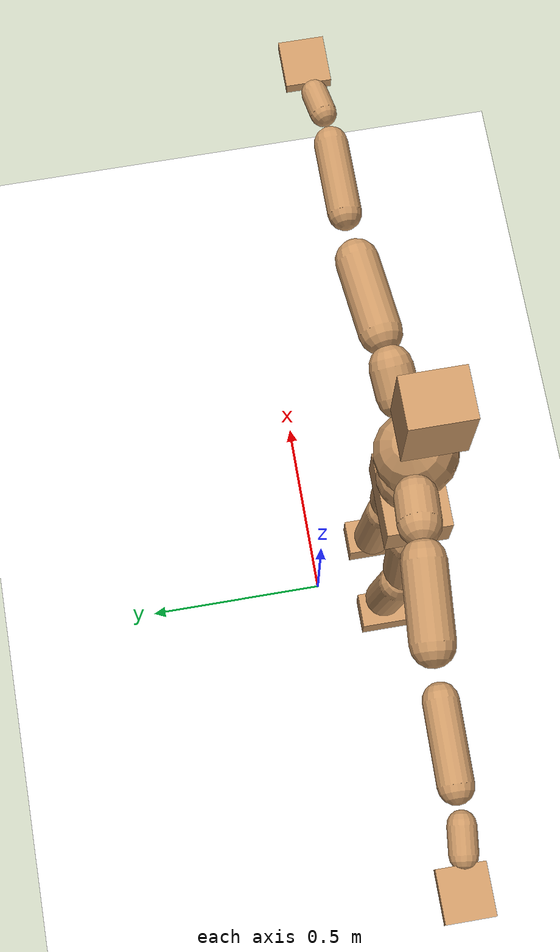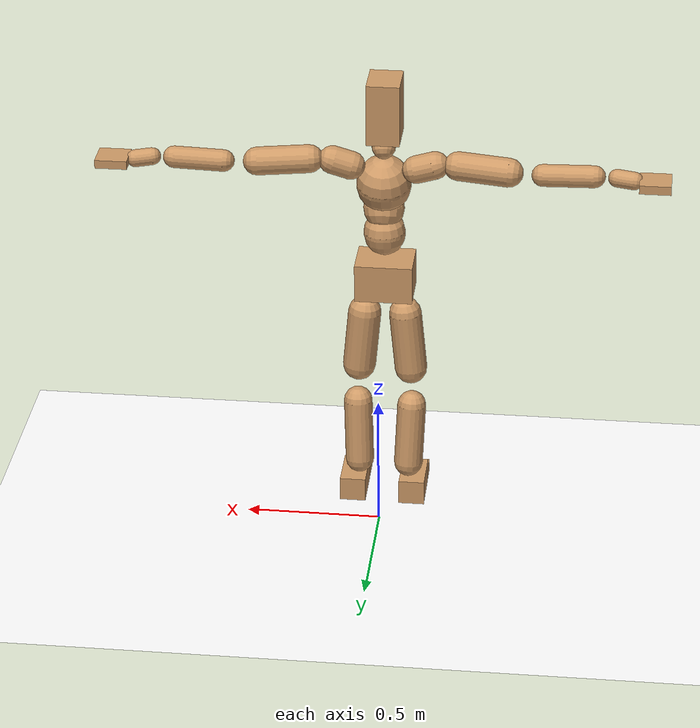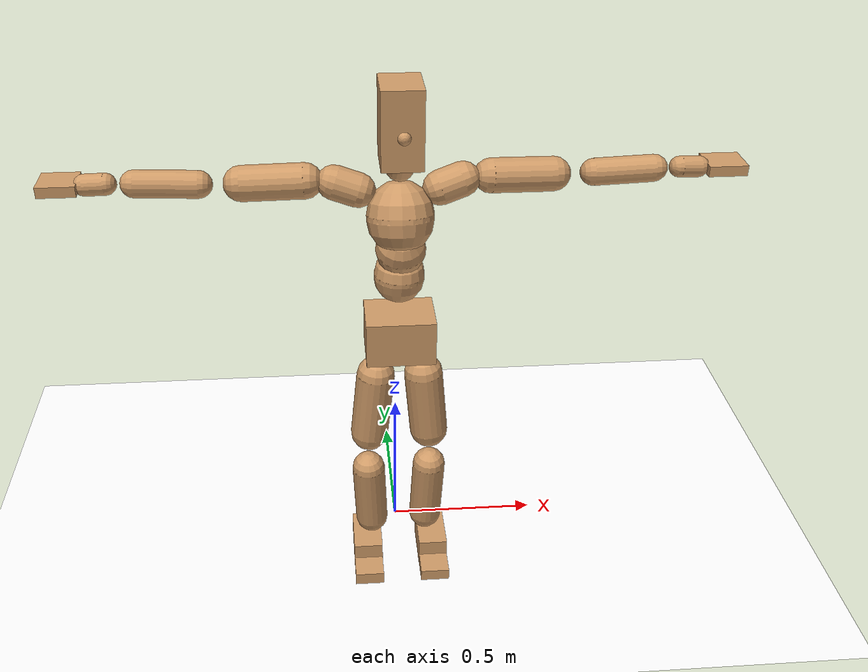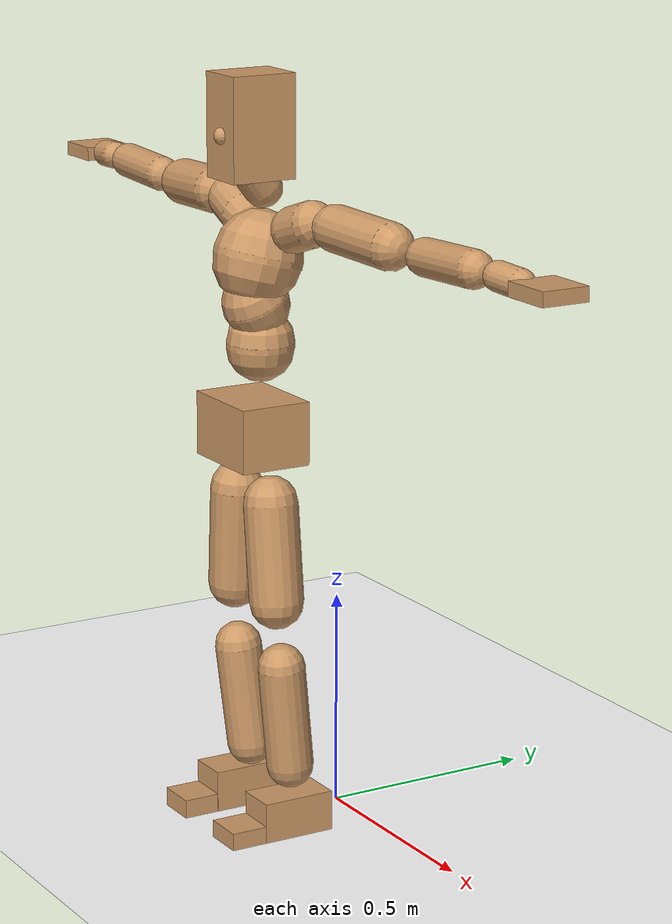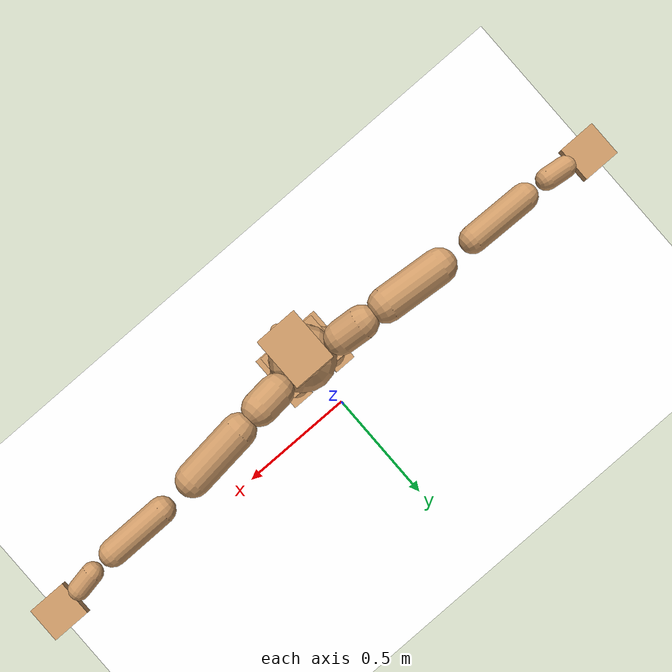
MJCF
<mujoco model="humanoid">
  <option integrator="implicitfast" />

  <visual>
    <global offwidth="1280" offheight="960" />
    <headlight active="1" ambient="0.34 0.34 0.34" diffuse="0.5 0.5 0.5" />
  </visual>

  <default>
    <joint damping="2" stiffness="2" armature="0.01" limited="true" solimplimit="0 .99 .01" />
    <geom condim="1" friction="0.7 0.005 0.0001" solimp=".99 .99 .003" solref="0.015 1" margin="0.001" rgba="0.8 0.6 .4 1" />
    <default class="smplcontact">
      <geom condim="3" friction="1. 0.005 0.0001" solref="0.015 1" solimp="0.98 0.98 0.001" priority="1" />
    </default>
    <default class="stiff_medium">
      <joint stiffness="10" />
    </default>
    <default class="stiff_medium_higher">
      <joint stiffness="50" />
    </default>
    <default class="stiff_high">
      <joint stiffness="100" />
    </default>
  </default>

  <asset>
    <texture type="skybox" builtin="gradient" rgb1="0.99 0.99 0.99" rgb2="0.608 0.828 0.892" width="100" />
    <texture builtin="flat" height="1278" mark="cross" markrgb="1 1 1" name="texgeom" random="0.01" rgb1="0.8 0.6 0.4" rgb2="0.8 0.6 0.4" type="cube" width="127" />
    <texture name="texplane" type="2d" builtin="checker" markrgb="1 1 1" rgb1="0.756 0.772 0.76" rgb2="0.6 0.6 0.6" width="100" height="100" />
    <material name="MatPlane" reflectance="0.5" texture="texplane" texrepeat="1 1" texuniform="true" />
    <material name="geom" texture="texgeom" texuniform="true" />
  </asset>

  <worldbody>
    <light name="tracking_light" pos="0 0 7" dir="0 0 -1" directional="true" cutoff="100" exponent="1" diffuse="1 1 1" specular="0.1 0.1 0.1" mode="trackcom" />
    <camera name="back" pos="0 3 2.4" xyaxes="-1 0 0 0 -1 2" mode="trackcom" />
    <camera name="side" pos="-3 0 2.4" xyaxes="0 -1 0 1 0 2" mode="trackcom" />
    <camera name="front_side" pos="-2.8 -2.8 0.8" xyaxes="0.5 -0.5 0 0.1 0.1 1" mode="trackcom" />
    <geom condim="3" name="floor" pos="0 0 0" rgba="1 1 1 1" size="100 100 .2" type="plane" material="MatPlane" />
    <body name="Pelvis" pos="-0.0018 -0.2233 0.9367" euler="90 0 0">
      <site name="Pelvis" size="0.01" />
      <freejoint name="Pelvis" />
      <geom type="box" pos="-0.0000 -0.0121 -0.0055" size="0.1069 0.0722 0.083" quat="1.0000 0.0000 0.0000 0.0000" density="3165.830099" name="Pelvis" />
      <body name="L_Hip" pos="0.0695 -0.0914 -0.0068">
        <joint name="L_Hip_x" type="hinge" pos="0 0 0" axis="1 0 0" stiffness="10.0" range="-160.0 22.92" class="stiff_medium" damping="15.0" armature="0.01"/>
        <joint name="L_Hip_y" type="hinge" pos="0 0 0" axis="0 1 0" stiffness="10.0" range="-70.0 70.0" class="stiff_medium" damping="10.000000000000002" armature="0.010000000000000007"/>
        <joint name="L_Hip_z" type="hinge" pos="0 0 0" axis="0 0 1" stiffness="10.0" range="-28.65 90.0" class="stiff_medium" damping="9.999999999999998" armature="0.009999999999999998"/>
        <geom type="capsule" density="2040.816327" fromto="0.0069 -0.075 -0.0009 0.0274 -0.3002 -0.0036" size="0.0615" name="L_Hip" />
        <body name="L_Knee" pos="0.0343 -0.3752 -0.0045">
          <joint name="L_Knee_x" type="hinge" pos="0 0 0" axis="1 0 0" range="-5.16 171.89" damping="8.0" armature="0.01" stiffness="2.0"/>
          <joint name="L_Knee_y" type="hinge" pos="0 0 0" axis="0 1 0" range="-4.58 6.88" damping="7.999999999999999" armature="0.009999999999999998" stiffness="2.0"/>
          <joint name="L_Knee_z" type="hinge" pos="0 0 0" axis="0 0 1" range="-6.88 4.58" damping="7.999999999999998" armature="0.009999999999999995" stiffness="2.0"/>
          <geom type="capsule" density="1234.567901" fromto="-0.0027 -0.0796 -0.0087 -0.0109 -0.3184 -0.035" size="0.0541" name="L_Knee" />
          <body name="L_Ankle" pos="-0.0136 -0.398 -0.0437">
            <joint name="L_Ankle_x" type="hinge" pos="0 0 0" axis="1 0 0" range="-45.84 45.84" class="stiff_medium" damping="6.000000000000025" armature="0.010000000000000085" stiffness="10.0"/>
            <joint name="L_Ankle_y" type="hinge" pos="0 0 0" axis="0 1 0" range="-74.48 22.92" class="stiff_medium" damping="3.000000000000001" armature="0.010000000000000005" stiffness="10.0"/>
            <joint name="L_Ankle_z" type="hinge" pos="0 0 0" axis="0 0 1" range="-4.58 4.58" class="stiff_medium" damping="5.999999999999934" armature="0.009999999999999783" stiffness="10.0"/>
            <geom type="box" pos="0.0233 -0.0239 0.0242" size="0.0483 0.0464 0.085" quat="1.0000 0.0000 0.0000 0.0000" density="449.071558" name="L_Ankle" class="smplcontact" />
            <body name="L_Toe" pos="0.0264 -0.0558 0.1193">
              <joint name="L_Toe_x" type="hinge" pos="0 0 0" axis="1 0 0" range="-91.67 22.92" armature="0.00999999999999966" damping="1.999999999999966" stiffness="2.0"/>
              <joint name="L_Toe_y" type="hinge" pos="0 0 0" axis="0 1 0" range="-4.58 4.58" armature="0.009999999999999976" damping="1.9999999999999976" stiffness="2.0"/>
              <joint name="L_Toe_z" type="hinge" pos="0 0 0" axis="0 0 1" range="-4.58 4.58" armature="0.009999999999998892" damping="1.999999999999889" stiffness="2.0"/>
              <geom type="box" pos="-0.003 0.0055 0.0248" size="0.0478 0.02 0.0496" quat="1.0000 0.0000 0.0000 0.0000" density="423.206892" name="L_Toe" class="smplcontact" />
            </body>
          </body>
        </body>
      </body>
      <body name="R_Hip" pos="-0.0677 -0.0905 -0.0043">
        <joint name="R_Hip_x" type="hinge" pos="0 0 0" axis="1 0 0" stiffness="10.0" range="-160.0 22.92" class="stiff_medium" damping="15.0" armature="0.01"/>
        <joint name="R_Hip_y" type="hinge" pos="0 0 0" axis="0 1 0" stiffness="10.0" range="-70.0 70.0" class="stiff_medium" damping="10.000000000000002" armature="0.010000000000000007"/>
        <joint name="R_Hip_z" type="hinge" pos="0 0 0" axis="0 0 1" stiffness="10.0" range="-90.0 28.65" class="stiff_medium" damping="9.999999999999998" armature="0.009999999999999998"/>
        <geom type="capsule" density="2040.816327" fromto="-0.0077 -0.0765 -0.0018 -0.0306 -0.3061 -0.0071" size="0.0606" name="R_Hip" />
        <body name="R_Knee" pos="-0.0383 -0.3826 -0.0089">
          <joint name="R_Knee_x" type="hinge" pos="0 0 0" axis="1 0 0" range="-5.16 171.89" damping="8.0" armature="0.01" stiffness="2.0"/>
          <joint name="R_Knee_y" type="hinge" pos="0 0 0" axis="0 1 0" range="-6.88 4.58" damping="7.999999999999999" armature="0.009999999999999998" stiffness="2.0"/>
          <joint name="R_Knee_z" type="hinge" pos="0 0 0" axis="0 0 1" range="-4.58 6.88" damping="7.999999999999998" armature="0.009999999999999995" stiffness="2.0"/>
          <geom type="capsule" density="1234.567901" fromto="0.0032 -0.0797 -0.0085 0.0126 -0.3187 -0.0338" size="0.0541" name="R_Knee" />
          <body name="R_Ankle" pos="0.0158 -0.3984 -0.0423">
            <joint name="R_Ankle_x" type="hinge" pos="0 0 0" axis="1 0 0" range="-45.84 45.84" class="stiff_medium" damping="6.000000000000025" armature="0.010000000000000085" stiffness="10.0"/>
            <joint name="R_Ankle_y" type="hinge" pos="0 0 0" axis="0 1 0" range="-22.92 74.48" class="stiff_medium" damping="3.000000000000001" armature="0.010000000000000005" stiffness="10.0"/>
            <joint name="R_Ankle_z" type="hinge" pos="0 0 0" axis="0 0 1" range="-4.58 4.58" class="stiff_medium" damping="5.999999999999934" armature="0.009999999999999783" stiffness="10.0"/>
            <geom type="box" pos="-0.0212 -0.0174 0.0256" size="0.0483 0.0478 0.0865" quat="1.0000 0.0000 0.0000 0.0000" density="434.700981" name="R_Ankle" class="smplcontact" />
            <body name="R_Toe" pos="-0.0254 -0.0481 0.1233">
              <joint name="R_Toe_x" type="hinge" pos="0 0 0" axis="1 0 0" range="-91.67 22.92" armature="0.00999999999999966" damping="1.999999999999966" stiffness="2.0"/>
              <joint name="R_Toe_y" type="hinge" pos="0 0 0" axis="0 1 0" range="-4.58 4.58" armature="0.009999999999999976" damping="1.9999999999999976" stiffness="2.0"/>
              <joint name="R_Toe_z" type="hinge" pos="0 0 0" axis="0 0 1" range="-4.58 4.58" armature="0.009999999999998892" damping="1.999999999999889" stiffness="2.0"/>
              <geom type="box" pos="0.0042 0.0045 0.0227" size="0.0479 0.0216 0.0493" quat="1.0000 0.0000 0.0000 0.0000" density="407.384095" name="R_Toe" class="smplcontact" />
            </body>
          </body>
        </body>
      </body>
      <body name="Torso" pos="-0.0025 0.109 -0.0267">
        <joint name="Torso_x" type="hinge" pos="0 0 0" axis="1 0 0" range="-25.78 57.3" class="stiff_medium" damping="16.249002662379553" armature="0.011000822944888123" stiffness="10.667084285714289"/>
        <joint name="Torso_y" type="hinge" pos="0 0 0" axis="0 1 0" range="-57.3 57.3" class="stiff_high" damping="25.82786225767886" armature="0.01578264216679615" stiffness="105.6664755102041"/>
        <joint name="Torso_z" type="hinge" pos="0 0 0" axis="0 0 1" range="-34.38 34.38" class="stiff_high" damping="22.95942684909094" armature="0.012628565201764912" stiffness="104.35375531914897"/>
        <geom type="capsule" density="2040.816327" fromto="0.0025 0.0608 0.0005 0.003 0.0743 0.0006" size="0.0769" name="Torso" />
        <body name="Spine" pos="0.0055 0.1352 0.0011">
          <joint name="Spine_x" type="hinge" pos="0 0 0" axis="1 0 0" stiffness="10.801640204081632" range="-25.78 57.3" class="stiff_medium" damping="16.529498689681223" armature="0.011242092117287047"/>
          <joint name="Spine_y" type="hinge" pos="0 0 0" axis="0 1 0" stiffness="10.993194042553192" range="-57.3 57.3" class="stiff_high" damping="10.550939846165113" armature="0.015822621024438047"/>
          <joint name="Spine_z" type="hinge" pos="0 0 0" axis="0 0 1" stiffness="21.950184081632656" range="-34.38 34.38" class="stiff_high" damping="14.755254913518767" armature="0.013775988465595862"/>
          <geom type="capsule" density="2040.816327" fromto="0.0007 0.0238 0.0114 0.0008 0.0291 0.014" size="0.0755" name="Spine" />
          <body name="Chest" pos="0.0015 0.0529 0.0254">
            <joint name="Chest_x" type="hinge" pos="0 0 0" axis="1 0 0" stiffness="11.160686250000001" range="-25.78 57.3" class="stiff_medium" damping="16.913025635620162" armature="0.011391192649850414"/>
            <joint name="Chest_y" type="hinge" pos="0 0 0" axis="0 1 0" stiffness="12.279827826086954" range="-57.3 57.3" class="stiff_high" damping="11.15352776697087" armature="0.015828955346832544"/>
            <joint name="Chest_z" type="hinge" pos="0 0 0" axis="0 0 1" stiffness="22.066057083333334" range="-34.38 34.38" class="stiff_high" damping="15.064016907343916" armature="0.014283161773945485"/>
            <geom type="capsule" density="2040.816327" fromto="-0.0009 0.0682 -0.0173 -0.001 0.0833 -0.0212" size="0.1002" name="Chest" />
            <body name="Neck" pos="-0.0028 0.2139 -0.0429">
              <joint name="Neck_x" type="hinge" pos="0 0 0" axis="1 0 0" range="-28.65 57.3" class="stiff_medium_higher" damping="10.000000000000004" armature="0.010000000000000009" stiffness="50.0"/>
              <joint name="Neck_y" type="hinge" pos="0 0 0" axis="0 1 0" range="-40.11 40.11" class="stiff_medium_higher" damping="10.0" armature="0.01" stiffness="50.0"/>
              <joint name="Neck_z" type="hinge" pos="0 0 0" axis="0 0 1" range="-40.11 40.11" class="stiff_medium_higher" damping="9.999999999999988" armature="0.009999999999999976" stiffness="50.0"/>
              <geom type="capsule" density="1000" fromto="0.001 0.013 0.0103 0.0041 0.052 0.0411" size="0.0436" name="Neck" />
              <body name="Head" pos="0.0052 0.065 0.0513">
                <joint name="Head_x" type="hinge" pos="0 0 0" axis="1 0 0" range="-28.65 57.3" class="stiff_medium_higher" damping="2.000000000000001" armature="0.010000000000000009" stiffness="50.0"/>
                <joint name="Head_y" type="hinge" pos="0 0 0" axis="0 1 0" range="-40.11 40.11" class="stiff_medium_higher" damping="2.0" armature="0.01" stiffness="50.0"/>
                <joint name="Head_z" type="hinge" pos="0 0 0" axis="0 0 1" range="-40.11 40.11" class="stiff_medium_higher" damping="1.9999999999999973" armature="0.009999999999999974" stiffness="50.0"/>
                <geom type="box" pos="-0.0042 0.0876 -0.0116" size="0.0606 0.1154 0.076" quat="1.0000 0.0000 0.0000 0.0000" density="1018.069894" name="Head" />
                <geom type="capsule" name="nose" size="0.02 0.01" pos="0 0.07 0.05" quat="1 0 0 0" mass="0" contype="0" conaffinity="0" />
              </body>
            </body>
            <body name="L_Thorax" pos="0.09456 0.14604 -0.04092">
              <joint name="L_Thorax_x" type="hinge" pos="0 0 0" axis="1 0 0" range="-10.89 4.58" class="stiff_medium_higher" damping="27.3428280371456" armature="0.0138831614052876" stiffness="67.31448112244898"/>
              <joint name="L_Thorax_y" type="hinge" pos="0 0 0" axis="0 1 0" range="-28.65 17.19" class="stiff_medium_higher" damping="29.39539222803986" armature="0.015973211475722778" stiffness="67.620175"/>
              <joint name="L_Thorax_z" type="hinge" pos="0 0 0" axis="0 0 1" range="-31.51 40.11" class="stiff_medium_higher" damping="29.39640952740423" armature="0.015975115138279115" stiffness="67.61679693877551"/>
              <geom type="capsule" density="1000" fromto="0.02184 0.00732 -0.00216 0.08736 0.02928 -0.00852" size="0.0521" name="L_Thorax" />
              <body name="L_Shoulder" pos="0.1092 0.0366 -0.01068">
                <joint name="L_Shoulder_x" type="hinge" pos="0 0 0" axis="1 0 0" range="-97.4 97.4" class="stiff_medium" damping="7.934224871342918" armature="0.013032307273704902" stiffness="13.417919999999999"/>
                <joint name="L_Shoulder_y" type="hinge" pos="0 0 0" axis="0 1 0" range="-108.86 80.21" class="stiff_medium" damping="8.787023272078152" armature="0.015885669306109254" stiffness="13.501298367346937"/>
                <joint name="L_Shoulder_z" type="hinge" pos="0 0 0" axis="0 0 1" range="-97.4 85.94" class="stiff_medium" damping="8.786069504764413" armature="0.015888008764521212" stiffness="13.496380000000002"/>
                <geom type="capsule" density="1000" fromto="0.06228 -0.00312 -0.0066 0.24924 -0.01224 -0.0264" size="0.0517" name="L_Shoulder" />
                <body name="L_Elbow" pos="0.31152 -0.01536 -0.033">
                  <joint name="L_Elbow_x" type="hinge" pos="0 0 0" axis="1 0 0" range="-17.19 4.58" damping="6.232456205291389" armature="0.011731525217588268" stiffness="2.6488293469387756"/>
                  <joint name="L_Elbow_y" type="hinge" pos="0 0 0" axis="0 1 0" range="-180.0 17.19" damping="7.156106367972161" armature="0.015461775606096722" stiffness="2.649623673469388"/>
                  <joint name="L_Elbow_z" type="hinge" pos="0 0 0" axis="0 0 1" range="-100.84 4.58" damping="7.157115854883427" armature="0.01547403112739422" stiffness="2.648272163265306"/>
                  <geom type="capsule" density="1000" fromto="0.05976 0.00216 -0.00024 0.23928 0.00864 -0.00108" size="0.0405" name="L_Elbow" />
                  <body name="L_Wrist" pos="0.29904 0.0108 -0.00144">
                    <joint name="L_Wrist_x" type="hinge" pos="0 0 0" axis="1 0 0" range="-180.0 22.92" armature="0.011470487256353397" damping="2.3885555565203305" stiffness="2.4869029183673472"/>
                    <joint name="L_Wrist_y" type="hinge" pos="0 0 0" axis="0 1 0" range="-17.19 17.19" armature="0.014137841032973743" damping="2.658561374727874" stiffness="2.4996562653061227"/>
                    <joint name="L_Wrist_z" type="hinge" pos="0 0 0" axis="0 0 1" range="-22.92 22.92" armature="0.014283798741946243" damping="2.6694984653462823" stiffness="2.4945122040816328"/>
                    <geom type="capsule" density="1000" fromto="0.02016 -0.00192 -0.0036 0.08064 -0.0078 -0.0144" size="0.0318" name="L_Wrist" class="smplcontact" />
                    <body name="L_Hand" pos="0.1008 -0.00984 -0.01788">
                      <joint name="L_Hand_x" type="hinge" pos="0 0 0" axis="1 0 0" range="-17.19 17.19" armature="0.010191691106290488" damping="2.2117892600832105" stiffness="2.4000000000000004"/>
                      <joint name="L_Hand_y" type="hinge" pos="0 0 0" axis="0 1 0" range="-51.57 51.57" armature="0.012318239464288804" damping="2.431615706245258" stiffness="2.4000000000000004"/>
                      <joint name="L_Hand_z" type="hinge" pos="0 0 0" axis="0 0 1" range="-91.67 91.67" armature="0.012885099984316611" damping="2.486935462064099" stiffness="2.4000000000000004"/>
                      <geom type="box" pos="0.05916 0.0012 -0.00696" size="0.0585 0.0158 0.0538" quat="1.0000 0.0000 0.0000 0.0000" density="400.552564" name="L_Hand" class="smplcontact" />
                    </body>
                  </body>
                </body>
              </body>
            </body>
            <body name="R_Thorax" pos="-0.09816 0.14256 -0.04632">
              <joint name="R_Thorax_x" type="hinge" pos="0 0 0" axis="1 0 0" range="-10.89 4.58" class="stiff_medium_higher" damping="27.3428280371456" armature="0.0138831614052876" stiffness="67.31448112244898"/>
              <joint name="R_Thorax_y" type="hinge" pos="0 0 0" axis="0 1 0" range="-17.19 28.65" class="stiff_medium_higher" damping="29.39539222803986" armature="0.015973211475722778" stiffness="67.620175"/>
              <joint name="R_Thorax_z" type="hinge" pos="0 0 0" axis="0 0 1" range="-40.11 31.51" class="stiff_medium_higher" damping="29.39640952740423" armature="0.015975115138279115" stiffness="67.61679693877551"/>
              <geom type="capsule" density="1000" fromto="-0.02304 0.0078 -0.00216 -0.09216 0.0312 -0.00876" size="0.0511" name="R_Thorax" />
              <body name="R_Shoulder" pos="-0.1152 0.03912 -0.01092">
                <joint name="R_Shoulder_x" type="hinge" pos="0 0 0" axis="1 0 0" range="-97.4 97.4" class="stiff_medium" damping="7.934224871342918" armature="0.013032307273704902" stiffness="13.417919999999999"/>
                <joint name="R_Shoulder_y" type="hinge" pos="0 0 0" axis="0 1 0" range="-80.21 108.86" class="stiff_medium" damping="8.787023272078152" armature="0.015885669306109254" stiffness="13.501298367346937"/>
                <joint name="R_Shoulder_z" type="hinge" pos="0 0 0" axis="0 0 1" range="-85.94 97.4" class="stiff_medium" damping="8.786069504764413" armature="0.015888008764521212" stiffness="13.496380000000002"/>
                <geom type="capsule" density="1000" fromto="-0.06084 -0.00324 -0.00516 -0.2436 -0.01284 -0.02052" size="0.0531" name="R_Shoulder" />
                <body name="R_Elbow" pos="-0.30444 -0.01596 -0.02568">
                  <joint name="R_Elbow_x" type="hinge" pos="0 0 0" axis="1 0 0" range="-17.19 4.58" damping="6.232456205291389" armature="0.011731525217588268" stiffness="2.6488293469387756"/>
                  <joint name="R_Elbow_y" type="hinge" pos="0 0 0" axis="0 1 0" range="-17.19 180.0" damping="7.156106367972161" armature="0.015461775606096722" stiffness="2.649623673469388"/>
                  <joint name="R_Elbow_z" type="hinge" pos="0 0 0" axis="0 0 1" range="-4.58 100.84" damping="7.157115854883427" armature="0.01547403112739422" stiffness="2.648272163265306"/>
                  <geom type="capsule" density="1000" fromto="-0.06132 0.00192 -0.00132 -0.24504 0.00744 -0.00528" size="0.0408" name="R_Elbow" />
                  <body name="R_Wrist" pos="-0.30636 0.00936 -0.00672">
                    <joint name="R_Wrist_x" type="hinge" pos="0 0 0" axis="1 0 0" range="-180.0 22.92" armature="0.011470487256353397" damping="2.3885555565203305" stiffness="2.4869029183673472"/>
                    <joint name="R_Wrist_y" type="hinge" pos="0 0 0" axis="0 1 0" range="-17.19 17.19" armature="0.014137841032973743" damping="2.658561374727874" stiffness="2.4996562653061227"/>
                    <joint name="R_Wrist_z" type="hinge" pos="0 0 0" axis="0 0 1" range="-22.92 22.92" armature="0.014283798741946243" damping="2.6694984653462823" stiffness="2.4945122040816328"/>
                    <geom type="capsule" density="1000" fromto="-0.02028 -0.00144 -0.00252 -0.08124 -0.00588 -0.00996" size="0.0326" name="R_Wrist" class="smplcontact" />
                    <body name="R_Hand" pos="-0.10152 -0.00732 -0.01236">
                      <joint name="R_Hand_x" type="hinge" pos="0 0 0" axis="1 0 0" range="-17.19 17.19" armature="0.010191691106290488" damping="2.2117892600832105" stiffness="2.4000000000000004"/>
                      <joint name="R_Hand_y" type="hinge" pos="0 0 0" axis="0 1 0" range="-51.57 51.57" armature="0.012318239464288804" damping="2.431615706245258" stiffness="2.4000000000000004"/>
                      <joint name="R_Hand_z" type="hinge" pos="0 0 0" axis="0 0 1" range="-91.67 91.67" armature="0.012885099984316611" damping="2.486935462064099" stiffness="2.4000000000000004"/>
                      <geom type="box" pos="-0.05544 -0.00108 -0.00948" size="0.0569 0.0164 0.0546" quat="1.0000 0.0000 0.0000 0.0000" density="403.679611" name="R_Hand" class="smplcontact" />
                    </body>
                  </body>
                </body>
              </body>
            </body>
          </body>
        </body>
      </body>
    </body>
  </worldbody>
  <actuator>
    <general name="L_Hip_x" joint="L_Hip_x" biastype="affine" gainprm="287.33006409732246" biasprm="-215.3247604770444 -180.0 -2.0" ctrllimited="true" ctrlrange="-1 1" forcerange="-360.0 360.0" />
    <general name="L_Hip_y" joint="L_Hip_y" biastype="affine" gainprm="219.9114857512855" biasprm="0.0 -180.0 -2.0000000000000004" ctrllimited="true" ctrlrange="-1 1" forcerange="-360.0 360.0" />
    <general name="L_Hip_z" joint="L_Hip_z" biastype="affine" gainprm="186.3749841742145" biasprm="96.3683546488669 -180.0 -1.9999999999999998" ctrllimited="true" ctrlrange="-1 1" forcerange="-360.0 360.0" />
    <general name="L_Knee_x" joint="L_Knee_x" biastype="affine" gainprm="278.10948965903646" biasprm="261.8988715665131 -180.0 -2.0" ctrllimited="true" ctrlrange="-1 1" forcerange="-360.0 360.0" />
    <general name="L_Knee_y" joint="L_Knee_y" biastype="affine" gainprm="18.001325905069514" biasprm="3.612831551628262 -180.0 -1.9999999999999998" ctrllimited="true" ctrlrange="-1 1" forcerange="-360.0 360.0" />
    <general name="L_Knee_z" joint="L_Knee_z" biastype="affine" gainprm="18.001325905069514" biasprm="-3.612831551628262 -180.0 -1.9999999999999996" ctrllimited="true" ctrlrange="-1 1" forcerange="-360.0 360.0" />
    <general name="L_Ankle_x" joint="L_Ankle_x" biastype="affine" gainprm="72.00530362027807" biasprm="0.0 -90.0 -2.0000000000000084" ctrllimited="true" ctrlrange="-1 1" forcerange="-180.0 180.0" />
    <general name="L_Ankle_y" joint="L_Ankle_y" biastype="affine" gainprm="76.49778111491148" biasprm="-40.49512930477244 -90.0 -2.0000000000000004" ctrllimited="true" ctrlrange="-1 1" forcerange="-180.0 180.0" />
    <general name="L_Ankle_z" joint="L_Ankle_z" biastype="affine" gainprm="7.1942471767206255" biasprm="0.0 -90.0 -1.9999999999999782" ctrllimited="true" ctrlrange="-1 1" forcerange="-180.0 180.0" />
    <general name="L_Toe_x" joint="L_Toe_x" biastype="affine" gainprm="71.99902043497087" biasprm="-43.19689898685965 -72.0 -0.7999999999999865" ctrllimited="true" ctrlrange="-1 1" forcerange="-144.0 144.0" />
    <general name="L_Toe_y" joint="L_Toe_y" biastype="affine" gainprm="5.755397741376501" biasprm="0.0 -72.0 -0.799999999999999" ctrllimited="true" ctrlrange="-1 1" forcerange="-144.0 144.0" />
    <general name="L_Toe_z" joint="L_Toe_z" biastype="affine" gainprm="5.755397741376501" biasprm="0.0 -72.0 -0.7999999999999556" ctrllimited="true" ctrlrange="-1 1" forcerange="-144.0 144.0" />
    <general name="R_Hip_x" joint="R_Hip_x" biastype="affine" gainprm="287.33006409732246" biasprm="-215.3247604770444 -180.0 -2.0" ctrllimited="true" ctrlrange="-1 1" forcerange="-360.0 360.0" />
    <general name="R_Hip_y" joint="R_Hip_y" biastype="affine" gainprm="219.9114857512855" biasprm="0.0 -180.0 -2.0000000000000004" ctrllimited="true" ctrlrange="-1 1" forcerange="-360.0 360.0" />
    <general name="R_Hip_z" joint="R_Hip_z" biastype="affine" gainprm="186.3749841742145" biasprm="-96.3683546488669 -180.0 -1.9999999999999998" ctrllimited="true" ctrlrange="-1 1" forcerange="-360.0 360.0" />
    <general name="R_Knee_x" joint="R_Knee_x" biastype="affine" gainprm="278.10948965903646" biasprm="261.8988715665131 -180.0 -2.0" ctrllimited="true" ctrlrange="-1 1" forcerange="-360.0 360.0" />
    <general name="R_Knee_y" joint="R_Knee_y" biastype="affine" gainprm="18.001325905069514" biasprm="-3.612831551628262 -180.0 -1.9999999999999998" ctrllimited="true" ctrlrange="-1 1" forcerange="-360.0 360.0" />
    <general name="R_Knee_z" joint="R_Knee_z" biastype="affine" gainprm="18.001325905069514" biasprm="3.612831551628262 -180.0 -1.9999999999999996" ctrllimited="true" ctrlrange="-1 1" forcerange="-360.0 360.0" />
    <general name="R_Ankle_x" joint="R_Ankle_x" biastype="affine" gainprm="72.00530362027807" biasprm="0.0 -90.0 -2.0000000000000084" ctrllimited="true" ctrlrange="-1 1" forcerange="-180.0 180.0" />
    <general name="R_Ankle_y" joint="R_Ankle_y" biastype="affine" gainprm="76.49778111491148" biasprm="40.49512930477244 -90.0 -2.0000000000000004" ctrllimited="true" ctrlrange="-1 1" forcerange="-180.0 180.0" />
    <general name="R_Ankle_z" joint="R_Ankle_z" biastype="affine" gainprm="7.1942471767206255" biasprm="0.0 -90.0 -1.9999999999999782" ctrllimited="true" ctrlrange="-1 1" forcerange="-180.0 180.0" />
    <general name="R_Toe_x" joint="R_Toe_x" biastype="affine" gainprm="71.99902043497087" biasprm="-43.19689898685965 -72.0 -0.7999999999999865" ctrllimited="true" ctrlrange="-1 1" forcerange="-144.0 144.0" />
    <general name="R_Toe_y" joint="R_Toe_y" biastype="affine" gainprm="5.755397741376501" biasprm="0.0 -72.0 -0.799999999999999" ctrllimited="true" ctrlrange="-1 1" forcerange="-144.0 144.0" />
    <general name="R_Toe_z" joint="R_Toe_z" biastype="affine" gainprm="5.755397741376501" biasprm="0.0 -72.0 -0.7999999999999556" ctrllimited="true" ctrlrange="-1 1" forcerange="-144.0 144.0" />
    <general name="Torso_x" joint="Torso_x" biastype="affine" gainprm="185.60976811664653" biasprm="70.4191127953382 -256.0100228571429 -4.333067376634547" ctrllimited="true" ctrlrange="-1 1" forcerange="-384.01503428571436 384.01503428571436" />
    <general name="Torso_y" joint="Torso_y" biastype="affine" gainprm="253.61822171989738" biasprm="0.0 -253.59954122448983 -5.1655724515357715" ctrllimited="true" ctrlrange="-1 1" forcerange="-380.39931183673474 380.39931183673474" />
    <general name="Torso_z" joint="Torso_z" biastype="affine" gainprm="150.28047671343057" biasprm="0.0 -250.44901276595752 -4.591885369818188" ctrllimited="true" ctrlrange="-1 1" forcerange="-375.6735191489363 375.6735191489363" />
    <general name="Spine_x" joint="Spine_x" biastype="affine" gainprm="187.9510726510386" biasprm="71.3073881795948 -259.2393648979592 -4.407866317248326" ctrllimited="true" ctrlrange="-1 1" forcerange="-388.8590473469388 388.8590473469388" />
    <general name="Spine_y" joint="Spine_y" biastype="affine" gainprm="263.8560915968915" biasprm="0.0 -263.8366570212766 -5.275469923082556" ctrllimited="true" ctrlrange="-1 1" forcerange="-395.7549855319149 395.7549855319149" />
    <general name="Spine_z" joint="Spine_z" biastype="affine" gainprm="158.05296693189538" biasprm="0.0 -263.4022089795919 -4.918418304506256" ctrllimited="true" ctrlrange="-1 1" forcerange="-395.1033134693878 395.1033134693878" />
    <general name="Chest_x" joint="Chest_x" biastype="affine" gainprm="194.19855805015155" biasprm="73.67764263048598 -267.85647 -4.51014016949871" ctrllimited="true" ctrlrange="-1 1" forcerange="-401.78470500000003 401.78470500000003" />
    <general name="Chest_y" joint="Chest_y" biastype="affine" gainprm="294.73757700737673" biasprm="0.0 -294.71586782608694 -5.576763883485435" ctrllimited="true" ctrlrange="-1 1" forcerange="-442.0738017391304 442.0738017391304" />
    <general name="Chest_z" joint="Chest_z" biastype="affine" gainprm="158.88731399878043" biasprm="0.0 -264.792685 -5.021338969114638" ctrllimited="true" ctrlrange="-1 1" forcerange="-397.1890275 397.1890275" />
    <general name="Neck_x" joint="Neck_x" biastype="affine" gainprm="27.00198885760427" biasprm="9.000662952534757 -36.0 -0.8000000000000004" ctrllimited="true" ctrlrange="-1 1" forcerange="-72.0 72.0" />
    <general name="Neck_y" joint="Neck_y" biastype="affine" gainprm="25.20185626709732" biasprm="0.0 -36.0 -0.8" ctrllimited="true" ctrlrange="-1 1" forcerange="-72.0 72.0" />
    <general name="Neck_z" joint="Neck_z" biastype="affine" gainprm="25.20185626709732" biasprm="0.0 -36.0 -0.799999999999999" ctrllimited="true" ctrlrange="-1 1" forcerange="-72.0 72.0" />
    <general name="Head_x" joint="Head_x" biastype="affine" gainprm="18.001325905069514" biasprm="6.000441968356505 -24.0 -0.8000000000000004" ctrllimited="true" ctrlrange="-1 1" forcerange="-48.0 48.0" />
    <general name="Head_y" joint="Head_y" biastype="affine" gainprm="16.801237511398213" biasprm="0.0 -24.0 -0.8" ctrllimited="true" ctrlrange="-1 1" forcerange="-48.0 48.0" />
    <general name="Head_z" joint="Head_z" biastype="affine" gainprm="16.801237511398213" biasprm="0.0 -24.0 -0.7999999999999989" ctrllimited="true" ctrlrange="-1 1" forcerange="-48.0 48.0" />
    <general name="L_Thorax_x" joint="L_Thorax_x" biastype="affine" gainprm="21.810088599489532" biasprm="-8.896034845687073 -161.55475469387756 -2.187426242971648" ctrllimited="true" ctrlrange="-1 1" forcerange="-323.1095093877551 323.1095093877551" />
    <general name="L_Thorax_y" joint="L_Thorax_y" biastype="affine" gainprm="64.92014975641781" biasprm="-16.230037439104454 -162.28842 -2.3516313782431886" ctrllimited="true" ctrlrange="-1 1" forcerange="-324.57684 324.57684" />
    <general name="L_Thorax_z" joint="L_Thorax_z" biastype="affine" gainprm="101.42558571489965" biasprm="12.179000797935451 -162.28031265306123 -2.3517127621923386" ctrllimited="true" ctrlrange="-1 1" forcerange="-324.56062530612246 324.56062530612246" />
    <general name="L_Shoulder_x" joint="L_Shoulder_x" biastype="affine" gainprm="109.48705143225524" biasprm="0.0 -64.406016 -2.1157932990247783" ctrllimited="true" ctrlrange="-1 1" forcerange="-128.812032 128.812032" />
    <general name="L_Shoulder_y" joint="L_Shoulder_y" biastype="affine" gainprm="106.92684888169526" biasprm="-16.202751470146342 -64.80623216326529 -2.3432062058875074" ctrllimited="true" ctrlrange="-1 1" forcerange="-129.61246432653058 129.61246432653058" />
    <general name="L_Shoulder_z" joint="L_Shoulder_z" biastype="affine" gainprm="103.64852686442701" biasprm="-6.478739597831004 -64.782624 -2.342951867937177" ctrllimited="true" ctrlrange="-1 1" forcerange="-129.565248 129.565248" />
    <general name="L_Elbow_x" joint="L_Elbow_x" biastype="affine" gainprm="18.115998712513008" biasprm="-10.493465492181402 -95.35785648979592 -0.9971929928466223" ctrllimited="true" ctrlrange="-1 1" forcerange="-190.71571297959184 190.71571297959184" />
    <general name="L_Elbow_y" joint="L_Elbow_y" biastype="affine" gainprm="164.14171059385552" biasprm="-135.52366703070956 -95.38645224489797 -1.1449770188755457" ctrllimited="true" ctrlrange="-1 1" forcerange="-190.77290448979593 190.77290448979593" />
    <general name="L_Elbow_z" joint="L_Elbow_z" biastype="affine" gainprm="87.70725119427513" biasprm="-80.08632138077144 -95.33779787755103 -1.1451385367813482" ctrllimited="true" ctrlrange="-1 1" forcerange="-190.67559575510205 190.67559575510205" />
    <general name="L_Wrist_x" joint="L_Wrist_x" biastype="affine" gainprm="26.423011144121567" biasprm="-20.454004487081686 -14.921417510204083 -0.9554222226081323" ctrllimited="true" ctrlrange="-1 1" forcerange="-29.842835020408167 29.842835020408167" />
    <general name="L_Wrist_y" joint="L_Wrist_y" biastype="affine" gainprm="4.499712708242443" biasprm="0.0 -14.997937591836736 -1.0634245498911497" ctrllimited="true" ctrlrange="-1 1" forcerange="-29.995875183673473 29.995875183673473" />
    <general name="L_Wrist_z" joint="L_Wrist_z" biastype="affine" gainprm="5.987270287979567" biasprm="0.0 -14.967073224489797 -1.0677993861385129" ctrllimited="true" ctrlrange="-1 1" forcerange="-29.934146448979593 29.934146448979593" />
    <general name="L_Hand_x" joint="L_Hand_x" biastype="affine" gainprm="4.320318217216685" biasprm="0.0 -14.400000000000002 -0.8847157040332843" ctrllimited="true" ctrlrange="-1 1" forcerange="-28.800000000000004 28.800000000000004" />
    <general name="L_Hand_y" joint="L_Hand_y" biastype="affine" gainprm="12.960954651650052" biasprm="0.0 -14.400000000000002 -0.9726462824981033" ctrllimited="true" ctrlrange="-1 1" forcerange="-28.800000000000004 28.800000000000004" />
    <general name="L_Hand_z" joint="L_Hand_z" biastype="affine" gainprm="23.03918388436611" biasprm="0.0 -14.400000000000002 -0.9947741848256396" ctrllimited="true" ctrlrange="-1 1" forcerange="-28.800000000000004 28.800000000000004" />
    <general name="R_Thorax_x" joint="R_Thorax_x" biastype="affine" gainprm="21.810088599489532" biasprm="-8.896034845687073 -161.55475469387756 -2.187426242971648" ctrllimited="true" ctrlrange="-1 1" forcerange="-323.1095093877551 323.1095093877551" />
    <general name="R_Thorax_y" joint="R_Thorax_y" biastype="affine" gainprm="64.92014975641781" biasprm="16.230037439104443 -162.28842 -2.3516313782431886" ctrllimited="true" ctrlrange="-1 1" forcerange="-324.57684 324.57684" />
    <general name="R_Thorax_z" joint="R_Thorax_z" biastype="affine" gainprm="101.42558571489965" biasprm="-12.179000797935451 -162.28031265306123 -2.3517127621923386" ctrllimited="true" ctrlrange="-1 1" forcerange="-324.56062530612246 324.56062530612246" />
    <general name="R_Shoulder_x" joint="R_Shoulder_x" biastype="affine" gainprm="109.48705143225524" biasprm="0.0 -64.406016 -2.1157932990247783" ctrllimited="true" ctrlrange="-1 1" forcerange="-128.812032 128.812032" />
    <general name="R_Shoulder_y" joint="R_Shoulder_y" biastype="affine" gainprm="106.92684888169526" biasprm="16.202751470146342 -64.80623216326529 -2.3432062058875074" ctrllimited="true" ctrlrange="-1 1" forcerange="-129.61246432653058 129.61246432653058" />
    <general name="R_Shoulder_z" joint="R_Shoulder_z" biastype="affine" gainprm="103.64852686442701" biasprm="6.478739597830989 -64.782624 -2.342951867937177" ctrllimited="true" ctrlrange="-1 1" forcerange="-129.565248 129.565248" />
    <general name="R_Elbow_x" joint="R_Elbow_x" biastype="affine" gainprm="18.115998712513008" biasprm="-10.493465492181402 -95.35785648979592 -0.9971929928466223" ctrllimited="true" ctrlrange="-1 1" forcerange="-190.71571297959184 190.71571297959184" />
    <general name="R_Elbow_y" joint="R_Elbow_y" biastype="affine" gainprm="164.14171059385552" biasprm="135.52366703070956 -95.38645224489797 -1.1449770188755457" ctrllimited="true" ctrlrange="-1 1" forcerange="-190.77290448979593 190.77290448979593" />
    <general name="R_Elbow_z" joint="R_Elbow_z" biastype="affine" gainprm="87.70725119427513" biasprm="80.08632138077142 -95.33779787755103 -1.1451385367813482" ctrllimited="true" ctrlrange="-1 1" forcerange="-190.67559575510205 190.67559575510205" />
    <general name="R_Wrist_x" joint="R_Wrist_x" biastype="affine" gainprm="26.423011144121567" biasprm="-20.454004487081686 -14.921417510204083 -0.9554222226081323" ctrllimited="true" ctrlrange="-1 1" forcerange="-29.842835020408167 29.842835020408167" />
    <general name="R_Wrist_y" joint="R_Wrist_y" biastype="affine" gainprm="4.499712708242443" biasprm="0.0 -14.997937591836736 -1.0634245498911497" ctrllimited="true" ctrlrange="-1 1" forcerange="-29.995875183673473 29.995875183673473" />
    <general name="R_Wrist_z" joint="R_Wrist_z" biastype="affine" gainprm="5.987270287979567" biasprm="0.0 -14.967073224489797 -1.0677993861385129" ctrllimited="true" ctrlrange="-1 1" forcerange="-29.934146448979593 29.934146448979593" />
    <general name="R_Hand_x" joint="R_Hand_x" biastype="affine" gainprm="4.320318217216685" biasprm="0.0 -14.400000000000002 -0.8847157040332843" ctrllimited="true" ctrlrange="-1 1" forcerange="-28.800000000000004 28.800000000000004" />
    <general name="R_Hand_y" joint="R_Hand_y" biastype="affine" gainprm="12.960954651650052" biasprm="0.0 -14.400000000000002 -0.9726462824981033" ctrllimited="true" ctrlrange="-1 1" forcerange="-28.800000000000004 28.800000000000004" />
    <general name="R_Hand_z" joint="R_Hand_z" biastype="affine" gainprm="23.03918388436611" biasprm="0.0 -14.400000000000002 -0.9947741848256396" ctrllimited="true" ctrlrange="-1 1" forcerange="-28.800000000000004 28.800000000000004" />
  </actuator>
  <contact>
    <exclude body1="Torso" body2="Chest" />
    <exclude body1="Head" body2="Chest" />
    <exclude body1="R_Knee" body2="R_Toe" />
    <exclude body1="R_Knee" body2="L_Ankle" />
    <exclude body1="R_Knee" body2="L_Toe" />
    <exclude body1="L_Knee" body2="L_Toe" />
    <exclude body1="L_Knee" body2="R_Ankle" />
    <exclude body1="L_Knee" body2="R_Toe" />
    <exclude body1="L_Shoulder" body2="Chest" />
    <exclude body1="R_Shoulder" body2="Chest" />
  </contact>
  <sensor>
    <framelinvel name="sensor_Pelvis_framelinvel" objtype="xbody" objname="Pelvis" />
    <framelinvel name="sensor_L_Hip_framelinvel" objtype="xbody" objname="L_Hip" />
    <framelinvel name="sensor_L_Knee_framelinvel" objtype="xbody" objname="L_Knee" />
    <framelinvel name="sensor_L_Ankle_framelinvel" objtype="xbody" objname="L_Ankle" />
    <framelinvel name="sensor_L_Toe_framelinvel" objtype="xbody" objname="L_Toe" />
    <framelinvel name="sensor_R_Hip_framelinvel" objtype="xbody" objname="R_Hip" />
    <framelinvel name="sensor_R_Knee_framelinvel" objtype="xbody" objname="R_Knee" />
    <framelinvel name="sensor_R_Ankle_framelinvel" objtype="xbody" objname="R_Ankle" />
    <framelinvel name="sensor_R_Toe_framelinvel" objtype="xbody" objname="R_Toe" />
    <framelinvel name="sensor_Torso_framelinvel" objtype="xbody" objname="Torso" />
    <framelinvel name="sensor_Spine_framelinvel" objtype="xbody" objname="Spine" />
    <framelinvel name="sensor_Chest_framelinvel" objtype="xbody" objname="Chest" />
    <framelinvel name="sensor_Neck_framelinvel" objtype="xbody" objname="Neck" />
    <framelinvel name="sensor_Head_framelinvel" objtype="xbody" objname="Head" />
    <framelinvel name="sensor_L_Thorax_framelinvel" objtype="xbody" objname="L_Thorax" />
    <framelinvel name="sensor_L_Shoulder_framelinvel" objtype="xbody" objname="L_Shoulder" />
    <framelinvel name="sensor_L_Elbow_framelinvel" objtype="xbody" objname="L_Elbow" />
    <framelinvel name="sensor_L_Wrist_framelinvel" objtype="xbody" objname="L_Wrist" />
    <framelinvel name="sensor_L_Hand_framelinvel" objtype="xbody" objname="L_Hand" />
    <framelinvel name="sensor_R_Thorax_framelinvel" objtype="xbody" objname="R_Thorax" />
    <framelinvel name="sensor_R_Shoulder_framelinvel" objtype="xbody" objname="R_Shoulder" />
    <framelinvel name="sensor_R_Elbow_framelinvel" objtype="xbody" objname="R_Elbow" />
    <framelinvel name="sensor_R_Wrist_framelinvel" objtype="xbody" objname="R_Wrist" />
    <framelinvel name="sensor_R_Hand_framelinvel" objtype="xbody" objname="R_Hand" />
    <frameangvel name="sensor_Pelvis_frameangvel" objtype="xbody" objname="Pelvis" />
    <frameangvel name="sensor_L_Hip_frameangvel" objtype="xbody" objname="L_Hip" />
    <frameangvel name="sensor_L_Knee_frameangvel" objtype="xbody" objname="L_Knee" />
    <frameangvel name="sensor_L_Ankle_frameangvel" objtype="xbody" objname="L_Ankle" />
    <frameangvel name="sensor_L_Toe_frameangvel" objtype="xbody" objname="L_Toe" />
    <frameangvel name="sensor_R_Hip_frameangvel" objtype="xbody" objname="R_Hip" />
    <frameangvel name="sensor_R_Knee_frameangvel" objtype="xbody" objname="R_Knee" />
    <frameangvel name="sensor_R_Ankle_frameangvel" objtype="xbody" objname="R_Ankle" />
    <frameangvel name="sensor_R_Toe_frameangvel" objtype="xbody" objname="R_Toe" />
    <frameangvel name="sensor_Torso_frameangvel" objtype="xbody" objname="Torso" />
    <frameangvel name="sensor_Spine_frameangvel" objtype="xbody" objname="Spine" />
    <frameangvel name="sensor_Chest_frameangvel" objtype="xbody" objname="Chest" />
    <frameangvel name="sensor_Neck_frameangvel" objtype="xbody" objname="Neck" />
    <frameangvel name="sensor_Head_frameangvel" objtype="xbody" objname="Head" />
    <frameangvel name="sensor_L_Thorax_frameangvel" objtype="xbody" objname="L_Thorax" />
    <frameangvel name="sensor_L_Shoulder_frameangvel" objtype="xbody" objname="L_Shoulder" />
    <frameangvel name="sensor_L_Elbow_frameangvel" objtype="xbody" objname="L_Elbow" />
    <frameangvel name="sensor_L_Wrist_frameangvel" objtype="xbody" objname="L_Wrist" />
    <frameangvel name="sensor_L_Hand_frameangvel" objtype="xbody" objname="L_Hand" />
    <frameangvel name="sensor_R_Thorax_frameangvel" objtype="xbody" objname="R_Thorax" />
    <frameangvel name="sensor_R_Shoulder_frameangvel" objtype="xbody" objname="R_Shoulder" />
    <frameangvel name="sensor_R_Elbow_frameangvel" objtype="xbody" objname="R_Elbow" />
    <frameangvel name="sensor_R_Wrist_frameangvel" objtype="xbody" objname="R_Wrist" />
    <frameangvel name="sensor_R_Hand_frameangvel" objtype="xbody" objname="R_Hand" />
    <subtreelinvel name="Chest_subtreelinvel" body="Chest" />
    <gyro name="Pelvis_gyro" site="Pelvis" />
  </sensor>
</mujoco>
